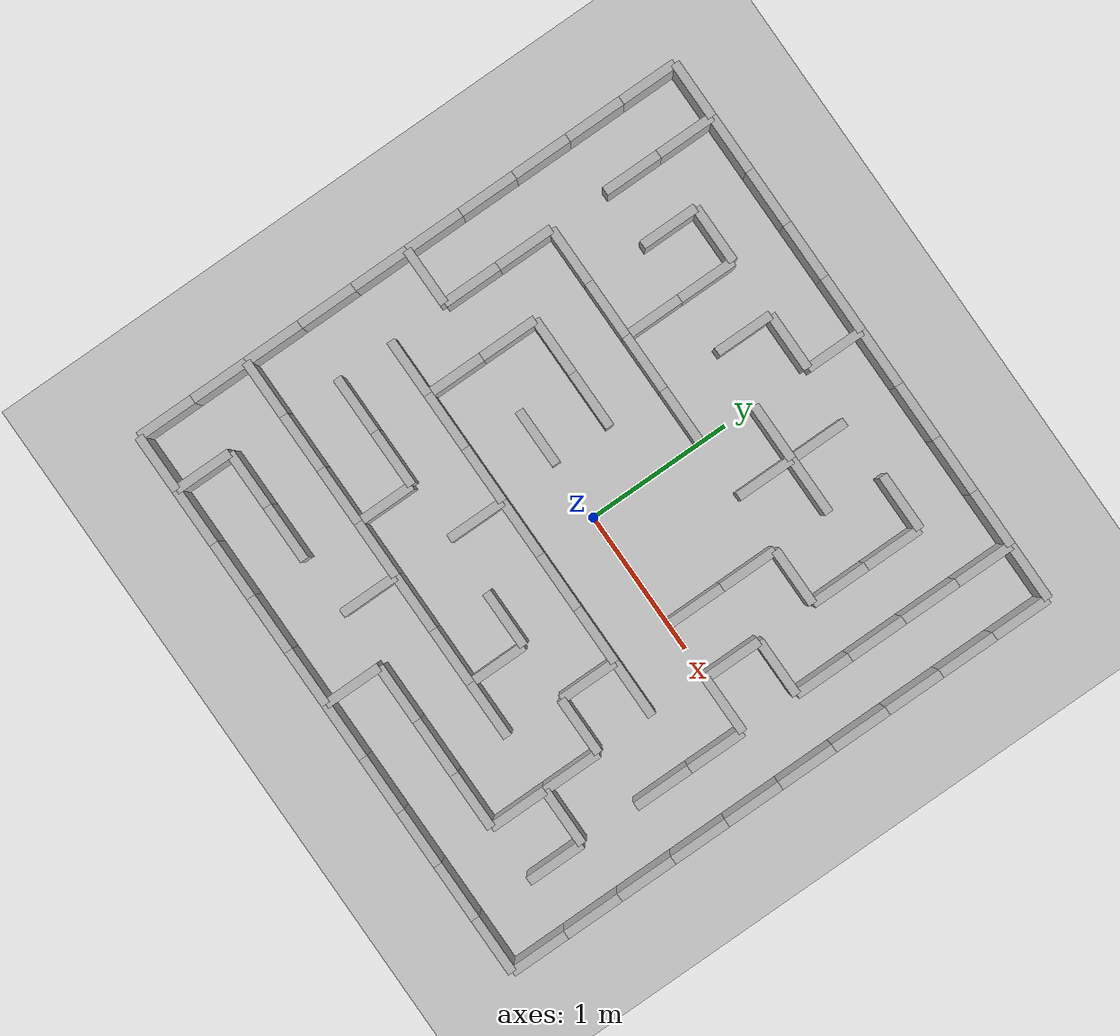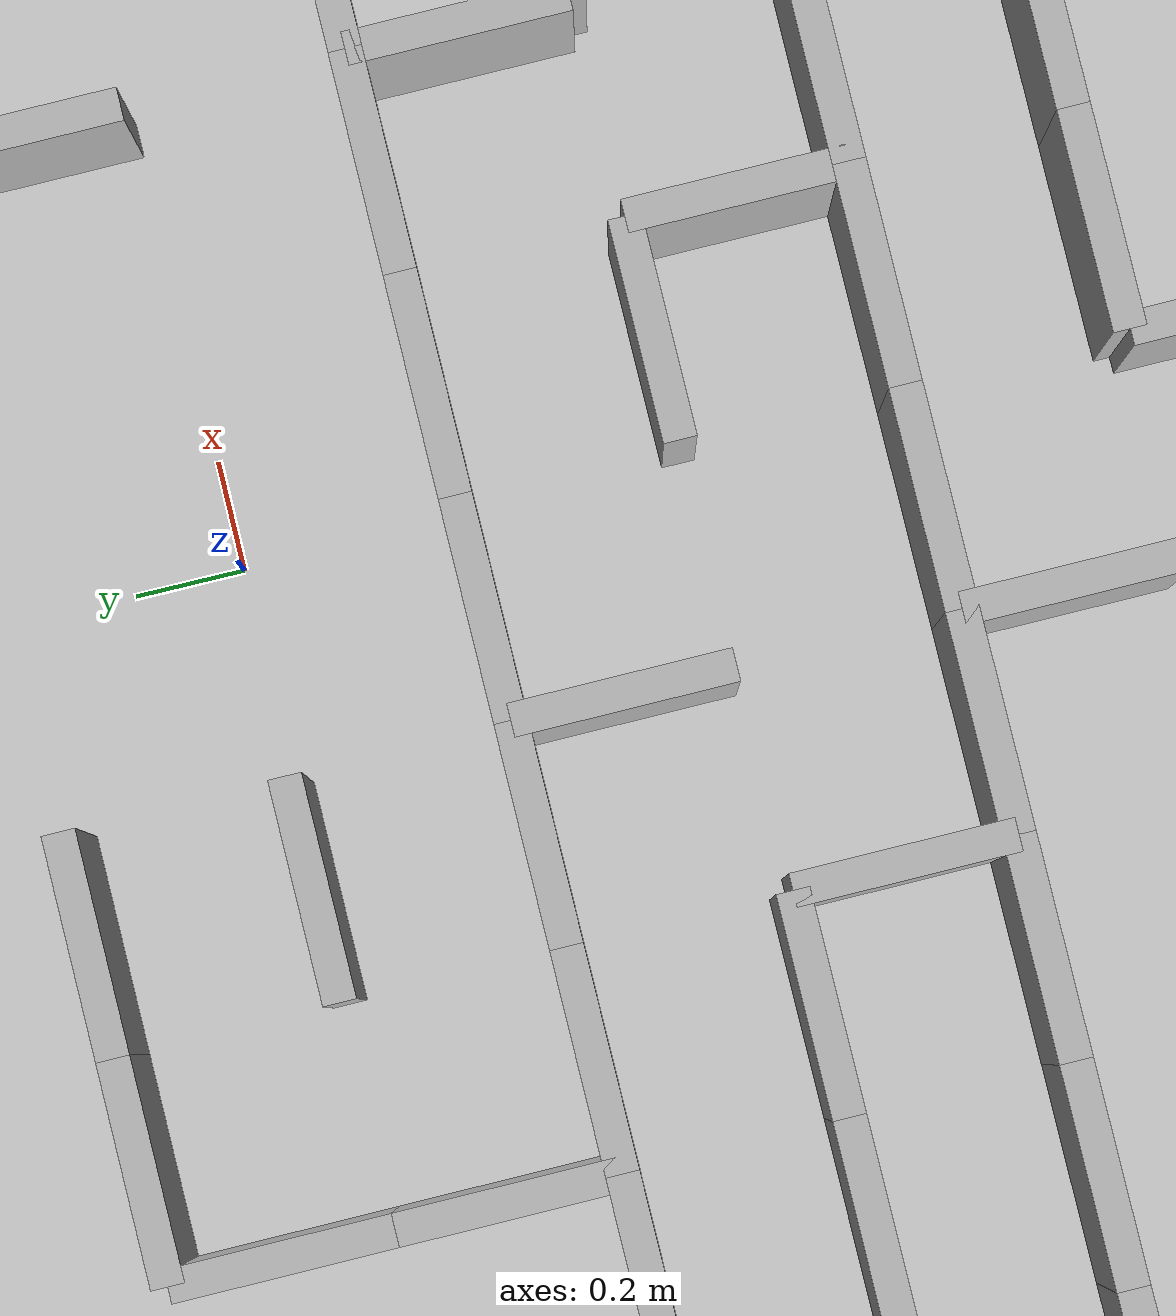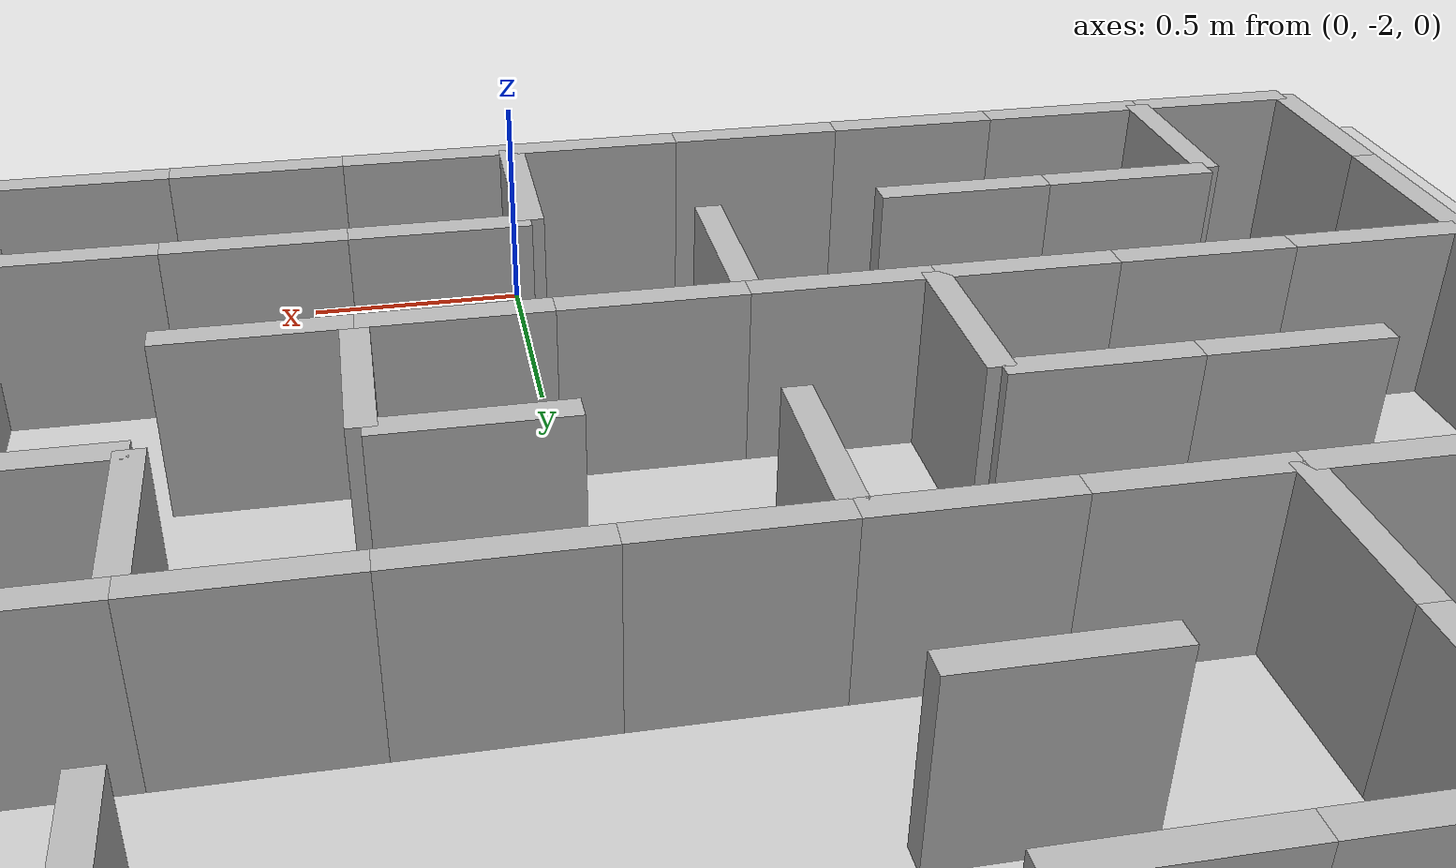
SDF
<?xml version='1.0'?>
<sdf version='1.7'>
  <world name='maze_world'>

        <light type="directional" name="sun">
            <cast_shadows>true</cast_shadows>
            <pose>0 0 10 0 0 0</pose>
            <diffuse>0.8 0.8 0.8 1</diffuse>
            <specular>0.2 0.2 0.2 1</specular>
            <direction>-0.5 0.1 -0.9</direction>
        </light>
          <model name='ground'>
    <static>true</static>
    <link name='link'>
      <collision name='collision'>
        <geometry>
          <plane>
            <normal>0 0 1</normal>
            <size>8.0 8.0</size>
          </plane>
        </geometry>
      </collision>
      <visual name='visual'>
        <geometry>
          <plane>
            <normal>0 0 1</normal>
            <size>8.0 8.0</size>
          </plane>
        </geometry>
      </visual>
    </link>
  </model>
  <gui>
    <camera name='camera'>
      <pose>0 0 1.6 0 -0.6 0</pose>
    </camera>
  </gui>
  <model name='maze'>
    <static>true</static>
    <link name='maze_wall_0_link'>
      <pose>-1.8 -2.0 0.2 0 0 0.0</pose>
      <collision name='collision_0'>
        <geometry>
          <box>
            <size>0.3999999999999999 0.06 0.4</size>
          </box>
        </geometry>
      </collision>
      <visual name='visual_0'>
        <geometry>
          <box>
            <size>0.3999999999999999 0.06 0.4</size>
          </box>
        </geometry>
      </visual>
    </link>
    <link name='maze_wall_1_link'>
      <pose>-2.0 -1.8 0.2 0 0 1.5707963267948966</pose>
      <collision name='collision_1'>
        <geometry>
          <box>
            <size>0.3999999999999999 0.06 0.4</size>
          </box>
        </geometry>
      </collision>
      <visual name='visual_1'>
        <geometry>
          <box>
            <size>0.3999999999999999 0.06 0.4</size>
          </box>
        </geometry>
      </visual>
    </link>
    <link name='maze_wall_2_link'>
      <pose>-1.6 -1.8 0.2 0 0 1.5707963267948966</pose>
      <collision name='collision_2'>
        <geometry>
          <box>
            <size>0.3999999999999999 0.06 0.4</size>
          </box>
        </geometry>
      </collision>
      <visual name='visual_2'>
        <geometry>
          <box>
            <size>0.3999999999999999 0.06 0.4</size>
          </box>
        </geometry>
      </visual>
    </link>
    <link name='maze_wall_3_link'>
      <pose>-1.4000000000000001 -2.0 0.2 0 0 0.0</pose>
      <collision name='collision_3'>
        <geometry>
          <box>
            <size>0.3999999999999999 0.06 0.4</size>
          </box>
        </geometry>
      </collision>
      <visual name='visual_3'>
        <geometry>
          <box>
            <size>0.3999999999999999 0.06 0.4</size>
          </box>
        </geometry>
      </visual>
    </link>
    <link name='maze_wall_4_link'>
      <pose>-1.4000000000000001 -1.6 0.2 0 0 0.0</pose>
      <collision name='collision_4'>
        <geometry>
          <box>
            <size>0.3999999999999999 0.06 0.4</size>
          </box>
        </geometry>
      </collision>
      <visual name='visual_4'>
        <geometry>
          <box>
            <size>0.3999999999999999 0.06 0.4</size>
          </box>
        </geometry>
      </visual>
    </link>
    <link name='maze_wall_5_link'>
      <pose>-1.0 -2.0 0.2 0 0 0.0</pose>
      <collision name='collision_5'>
        <geometry>
          <box>
            <size>0.3999999999999999 0.06 0.4</size>
          </box>
        </geometry>
      </collision>
      <visual name='visual_5'>
        <geometry>
          <box>
            <size>0.3999999999999999 0.06 0.4</size>
          </box>
        </geometry>
      </visual>
    </link>
    <link name='maze_wall_6_link'>
      <pose>-1.0 -1.6 0.2 0 0 0.0</pose>
      <collision name='collision_6'>
        <geometry>
          <box>
            <size>0.3999999999999999 0.06 0.4</size>
          </box>
        </geometry>
      </collision>
      <visual name='visual_6'>
        <geometry>
          <box>
            <size>0.3999999999999999 0.06 0.4</size>
          </box>
        </geometry>
      </visual>
    </link>
    <link name='maze_wall_7_link'>
      <pose>-0.5999999999999999 -2.0 0.2 0 0 0.0</pose>
      <collision name='collision_7'>
        <geometry>
          <box>
            <size>0.39999999999999997 0.06 0.4</size>
          </box>
        </geometry>
      </collision>
      <visual name='visual_7'>
        <geometry>
          <box>
            <size>0.39999999999999997 0.06 0.4</size>
          </box>
        </geometry>
      </visual>
    </link>
    <link name='maze_wall_8_link'>
      <pose>-0.1999999999999999 -2.0 0.2 0 0 0.0</pose>
      <collision name='collision_8'>
        <geometry>
          <box>
            <size>0.4 0.06 0.4</size>
          </box>
        </geometry>
      </collision>
      <visual name='visual_8'>
        <geometry>
          <box>
            <size>0.4 0.06 0.4</size>
          </box>
        </geometry>
      </visual>
    </link>
    <link name='maze_wall_9_link'>
      <pose>1.1102230246251565e-16 -1.8 0.2 0 0 1.5707963267948966</pose>
      <collision name='collision_9'>
        <geometry>
          <box>
            <size>0.3999999999999999 0.06 0.4</size>
          </box>
        </geometry>
      </collision>
      <visual name='visual_9'>
        <geometry>
          <box>
            <size>0.3999999999999999 0.06 0.4</size>
          </box>
        </geometry>
      </visual>
    </link>
    <link name='maze_wall_10_link'>
      <pose>0.2 -2.0 0.2 0 0 0.0</pose>
      <collision name='collision_10'>
        <geometry>
          <box>
            <size>0.4 0.06 0.4</size>
          </box>
        </geometry>
      </collision>
      <visual name='visual_10'>
        <geometry>
          <box>
            <size>0.4 0.06 0.4</size>
          </box>
        </geometry>
      </visual>
    </link>
    <link name='maze_wall_11_link'>
      <pose>0.2 -1.6 0.2 0 0 0.0</pose>
      <collision name='collision_11'>
        <geometry>
          <box>
            <size>0.4 0.06 0.4</size>
          </box>
        </geometry>
      </collision>
      <visual name='visual_11'>
        <geometry>
          <box>
            <size>0.4 0.06 0.4</size>
          </box>
        </geometry>
      </visual>
    </link>
    <link name='maze_wall_12_link'>
      <pose>0.6000000000000003 -2.0 0.2 0 0 0.0</pose>
      <collision name='collision_12'>
        <geometry>
          <box>
            <size>0.39999999999999997 0.06 0.4</size>
          </box>
        </geometry>
      </collision>
      <visual name='visual_12'>
        <geometry>
          <box>
            <size>0.39999999999999997 0.06 0.4</size>
          </box>
        </geometry>
      </visual>
    </link>
    <link name='maze_wall_13_link'>
      <pose>0.6000000000000003 -1.6 0.2 0 0 0.0</pose>
      <collision name='collision_13'>
        <geometry>
          <box>
            <size>0.39999999999999997 0.06 0.4</size>
          </box>
        </geometry>
      </collision>
      <visual name='visual_13'>
        <geometry>
          <box>
            <size>0.39999999999999997 0.06 0.4</size>
          </box>
        </geometry>
      </visual>
    </link>
    <link name='maze_wall_14_link'>
      <pose>1.0000000000000002 -2.0 0.2 0 0 0.0</pose>
      <collision name='collision_14'>
        <geometry>
          <box>
            <size>0.3999999999999999 0.06 0.4</size>
          </box>
        </geometry>
      </collision>
      <visual name='visual_14'>
        <geometry>
          <box>
            <size>0.3999999999999999 0.06 0.4</size>
          </box>
        </geometry>
      </visual>
    </link>
    <link name='maze_wall_15_link'>
      <pose>1.0000000000000002 -1.6 0.2 0 0 0.0</pose>
      <collision name='collision_15'>
        <geometry>
          <box>
            <size>0.3999999999999999 0.06 0.4</size>
          </box>
        </geometry>
      </collision>
      <visual name='visual_15'>
        <geometry>
          <box>
            <size>0.3999999999999999 0.06 0.4</size>
          </box>
        </geometry>
      </visual>
    </link>
    <link name='maze_wall_16_link'>
      <pose>1.4000000000000001 -2.0 0.2 0 0 0.0</pose>
      <collision name='collision_16'>
        <geometry>
          <box>
            <size>0.3999999999999999 0.06 0.4</size>
          </box>
        </geometry>
      </collision>
      <visual name='visual_16'>
        <geometry>
          <box>
            <size>0.3999999999999999 0.06 0.4</size>
          </box>
        </geometry>
      </visual>
    </link>
    <link name='maze_wall_17_link'>
      <pose>1.8 -2.0 0.2 0 0 0.0</pose>
      <collision name='collision_17'>
        <geometry>
          <box>
            <size>0.3999999999999999 0.06 0.4</size>
          </box>
        </geometry>
      </collision>
      <visual name='visual_17'>
        <geometry>
          <box>
            <size>0.3999999999999999 0.06 0.4</size>
          </box>
        </geometry>
      </visual>
    </link>
    <link name='maze_wall_18_link'>
      <pose>2.0 -1.8 0.2 0 0 1.5707963267948966</pose>
      <collision name='collision_18'>
        <geometry>
          <box>
            <size>0.3999999999999999 0.06 0.4</size>
          </box>
        </geometry>
      </collision>
      <visual name='visual_18'>
        <geometry>
          <box>
            <size>0.3999999999999999 0.06 0.4</size>
          </box>
        </geometry>
      </visual>
    </link>
    <link name='maze_wall_19_link'>
      <pose>-1.8 -1.2000000000000002 0.2 0 0 0.0</pose>
      <collision name='collision_19'>
        <geometry>
          <box>
            <size>0.3999999999999999 0.06 0.4</size>
          </box>
        </geometry>
      </collision>
      <visual name='visual_19'>
        <geometry>
          <box>
            <size>0.3999999999999999 0.06 0.4</size>
          </box>
        </geometry>
      </visual>
    </link>
    <link name='maze_wall_20_link'>
      <pose>-2.0 -1.4000000000000001 0.2 0 0 1.5707963267948966</pose>
      <collision name='collision_20'>
        <geometry>
          <box>
            <size>0.3999999999999999 0.06 0.4</size>
          </box>
        </geometry>
      </collision>
      <visual name='visual_20'>
        <geometry>
          <box>
            <size>0.3999999999999999 0.06 0.4</size>
          </box>
        </geometry>
      </visual>
    </link>
    <link name='maze_wall_21_link'>
      <pose>-1.4000000000000001 -1.2000000000000002 0.2 0 0 0.0</pose>
      <collision name='collision_21'>
        <geometry>
          <box>
            <size>0.3999999999999999 0.06 0.4</size>
          </box>
        </geometry>
      </collision>
      <visual name='visual_21'>
        <geometry>
          <box>
            <size>0.3999999999999999 0.06 0.4</size>
          </box>
        </geometry>
      </visual>
    </link>
    <link name='maze_wall_22_link'>
      <pose>-1.0 -1.2000000000000002 0.2 0 0 0.0</pose>
      <collision name='collision_22'>
        <geometry>
          <box>
            <size>0.3999999999999999 0.06 0.4</size>
          </box>
        </geometry>
      </collision>
      <visual name='visual_22'>
        <geometry>
          <box>
            <size>0.3999999999999999 0.06 0.4</size>
          </box>
        </geometry>
      </visual>
    </link>
    <link name='maze_wall_23_link'>
      <pose>-0.5999999999999999 -1.2000000000000002 0.2 0 0 0.0</pose>
      <collision name='collision_23'>
        <geometry>
          <box>
            <size>0.39999999999999997 0.06 0.4</size>
          </box>
        </geometry>
      </collision>
      <visual name='visual_23'>
        <geometry>
          <box>
            <size>0.39999999999999997 0.06 0.4</size>
          </box>
        </geometry>
      </visual>
    </link>
    <link name='maze_wall_24_link'>
      <pose>-0.39999999999999986 -1.4000000000000001 0.2 0 0 1.5707963267948966</pose>
      <collision name='collision_24'>
        <geometry>
          <box>
            <size>0.3999999999999999 0.06 0.4</size>
          </box>
        </geometry>
      </collision>
      <visual name='visual_24'>
        <geometry>
          <box>
            <size>0.3999999999999999 0.06 0.4</size>
          </box>
        </geometry>
      </visual>
    </link>
    <link name='maze_wall_25_link'>
      <pose>-0.1999999999999999 -1.2000000000000002 0.2 0 0 0.0</pose>
      <collision name='collision_25'>
        <geometry>
          <box>
            <size>0.4 0.06 0.4</size>
          </box>
        </geometry>
      </collision>
      <visual name='visual_25'>
        <geometry>
          <box>
            <size>0.4 0.06 0.4</size>
          </box>
        </geometry>
      </visual>
    </link>
    <link name='maze_wall_26_link'>
      <pose>0.2 -1.2000000000000002 0.2 0 0 0.0</pose>
      <collision name='collision_26'>
        <geometry>
          <box>
            <size>0.4 0.06 0.4</size>
          </box>
        </geometry>
      </collision>
      <visual name='visual_26'>
        <geometry>
          <box>
            <size>0.4 0.06 0.4</size>
          </box>
        </geometry>
      </visual>
    </link>
    <link name='maze_wall_27_link'>
      <pose>0.6000000000000003 -1.2000000000000002 0.2 0 0 0.0</pose>
      <collision name='collision_27'>
        <geometry>
          <box>
            <size>0.39999999999999997 0.06 0.4</size>
          </box>
        </geometry>
      </collision>
      <visual name='visual_27'>
        <geometry>
          <box>
            <size>0.39999999999999997 0.06 0.4</size>
          </box>
        </geometry>
      </visual>
    </link>
    <link name='maze_wall_28_link'>
      <pose>1.2000000000000002 -1.4000000000000001 0.2 0 0 1.5707963267948966</pose>
      <collision name='collision_28'>
        <geometry>
          <box>
            <size>0.3999999999999999 0.06 0.4</size>
          </box>
        </geometry>
      </collision>
      <visual name='visual_28'>
        <geometry>
          <box>
            <size>0.3999999999999999 0.06 0.4</size>
          </box>
        </geometry>
      </visual>
    </link>
    <link name='maze_wall_29_link'>
      <pose>1.4000000000000001 -1.2000000000000002 0.2 0 0 0.0</pose>
      <collision name='collision_29'>
        <geometry>
          <box>
            <size>0.3999999999999999 0.06 0.4</size>
          </box>
        </geometry>
      </collision>
      <visual name='visual_29'>
        <geometry>
          <box>
            <size>0.3999999999999999 0.06 0.4</size>
          </box>
        </geometry>
      </visual>
    </link>
    <link name='maze_wall_30_link'>
      <pose>1.6 -1.4000000000000001 0.2 0 0 1.5707963267948966</pose>
      <collision name='collision_30'>
        <geometry>
          <box>
            <size>0.3999999999999999 0.06 0.4</size>
          </box>
        </geometry>
      </collision>
      <visual name='visual_30'>
        <geometry>
          <box>
            <size>0.3999999999999999 0.06 0.4</size>
          </box>
        </geometry>
      </visual>
    </link>
    <link name='maze_wall_31_link'>
      <pose>2.0 -1.4000000000000001 0.2 0 0 1.5707963267948966</pose>
      <collision name='collision_31'>
        <geometry>
          <box>
            <size>0.3999999999999999 0.06 0.4</size>
          </box>
        </geometry>
      </collision>
      <visual name='visual_31'>
        <geometry>
          <box>
            <size>0.3999999999999999 0.06 0.4</size>
          </box>
        </geometry>
      </visual>
    </link>
    <link name='maze_wall_32_link'>
      <pose>-2.0 -1.0 0.2 0 0 1.5707963267948966</pose>
      <collision name='collision_32'>
        <geometry>
          <box>
            <size>0.3999999999999999 0.06 0.4</size>
          </box>
        </geometry>
      </collision>
      <visual name='visual_32'>
        <geometry>
          <box>
            <size>0.3999999999999999 0.06 0.4</size>
          </box>
        </geometry>
      </visual>
    </link>
    <link name='maze_wall_33_link'>
      <pose>-1.4000000000000001 -0.8 0.2 0 0 0.0</pose>
      <collision name='collision_33'>
        <geometry>
          <box>
            <size>0.3999999999999999 0.06 0.4</size>
          </box>
        </geometry>
      </collision>
      <visual name='visual_33'>
        <geometry>
          <box>
            <size>0.3999999999999999 0.06 0.4</size>
          </box>
        </geometry>
      </visual>
    </link>
    <link name='maze_wall_34_link'>
      <pose>-1.0 -0.8 0.2 0 0 0.0</pose>
      <collision name='collision_34'>
        <geometry>
          <box>
            <size>0.3999999999999999 0.06 0.4</size>
          </box>
        </geometry>
      </collision>
      <visual name='visual_34'>
        <geometry>
          <box>
            <size>0.3999999999999999 0.06 0.4</size>
          </box>
        </geometry>
      </visual>
    </link>
    <link name='maze_wall_35_link'>
      <pose>-0.8 -1.0 0.2 0 0 1.5707963267948966</pose>
      <collision name='collision_35'>
        <geometry>
          <box>
            <size>0.3999999999999999 0.06 0.4</size>
          </box>
        </geometry>
      </collision>
      <visual name='visual_35'>
        <geometry>
          <box>
            <size>0.3999999999999999 0.06 0.4</size>
          </box>
        </geometry>
      </visual>
    </link>
    <link name='maze_wall_36_link'>
      <pose>0.2 -0.8 0.2 0 0 0.0</pose>
      <collision name='collision_36'>
        <geometry>
          <box>
            <size>0.4 0.06 0.4</size>
          </box>
        </geometry>
      </collision>
      <visual name='visual_36'>
        <geometry>
          <box>
            <size>0.4 0.06 0.4</size>
          </box>
        </geometry>
      </visual>
    </link>
    <link name='maze_wall_37_link'>
      <pose>0.4 -1.0 0.2 0 0 1.5707963267948966</pose>
      <collision name='collision_37'>
        <geometry>
          <box>
            <size>0.3999999999999999 0.06 0.4</size>
          </box>
        </geometry>
      </collision>
      <visual name='visual_37'>
        <geometry>
          <box>
            <size>0.3999999999999999 0.06 0.4</size>
          </box>
        </geometry>
      </visual>
    </link>
    <link name='maze_wall_38_link'>
      <pose>1.0000000000000002 -0.8 0.2 0 0 0.0</pose>
      <collision name='collision_38'>
        <geometry>
          <box>
            <size>0.3999999999999999 0.06 0.4</size>
          </box>
        </geometry>
      </collision>
      <visual name='visual_38'>
        <geometry>
          <box>
            <size>0.3999999999999999 0.06 0.4</size>
          </box>
        </geometry>
      </visual>
    </link>
    <link name='maze_wall_39_link'>
      <pose>1.2000000000000002 -1.0 0.2 0 0 1.5707963267948966</pose>
      <collision name='collision_39'>
        <geometry>
          <box>
            <size>0.3999999999999999 0.06 0.4</size>
          </box>
        </geometry>
      </collision>
      <visual name='visual_39'>
        <geometry>
          <box>
            <size>0.3999999999999999 0.06 0.4</size>
          </box>
        </geometry>
      </visual>
    </link>
    <link name='maze_wall_40_link'>
      <pose>2.0 -1.0 0.2 0 0 1.5707963267948966</pose>
      <collision name='collision_40'>
        <geometry>
          <box>
            <size>0.3999999999999999 0.06 0.4</size>
          </box>
        </geometry>
      </collision>
      <visual name='visual_40'>
        <geometry>
          <box>
            <size>0.3999999999999999 0.06 0.4</size>
          </box>
        </geometry>
      </visual>
    </link>
    <link name='maze_wall_41_link'>
      <pose>-2.0 -0.5999999999999999 0.2 0 0 1.5707963267948966</pose>
      <collision name='collision_41'>
        <geometry>
          <box>
            <size>0.39999999999999997 0.06 0.4</size>
          </box>
        </geometry>
      </collision>
      <visual name='visual_41'>
        <geometry>
          <box>
            <size>0.39999999999999997 0.06 0.4</size>
          </box>
        </geometry>
      </visual>
    </link>
    <link name='maze_wall_42_link'>
      <pose>-1.4000000000000001 -0.39999999999999986 0.2 0 0 0.0</pose>
      <collision name='collision_42'>
        <geometry>
          <box>
            <size>0.3999999999999999 0.06 0.4</size>
          </box>
        </geometry>
      </collision>
      <visual name='visual_42'>
        <geometry>
          <box>
            <size>0.3999999999999999 0.06 0.4</size>
          </box>
        </geometry>
      </visual>
    </link>
    <link name='maze_wall_43_link'>
      <pose>-1.0 -0.39999999999999986 0.2 0 0 0.0</pose>
      <collision name='collision_43'>
        <geometry>
          <box>
            <size>0.3999999999999999 0.06 0.4</size>
          </box>
        </geometry>
      </collision>
      <visual name='visual_43'>
        <geometry>
          <box>
            <size>0.3999999999999999 0.06 0.4</size>
          </box>
        </geometry>
      </visual>
    </link>
    <link name='maze_wall_44_link'>
      <pose>-0.5999999999999999 -0.39999999999999986 0.2 0 0 0.0</pose>
      <collision name='collision_44'>
        <geometry>
          <box>
            <size>0.39999999999999997 0.06 0.4</size>
          </box>
        </geometry>
      </collision>
      <visual name='visual_44'>
        <geometry>
          <box>
            <size>0.39999999999999997 0.06 0.4</size>
          </box>
        </geometry>
      </visual>
    </link>
    <link name='maze_wall_45_link'>
      <pose>-0.39999999999999986 -0.5999999999999999 0.2 0 0 1.5707963267948966</pose>
      <collision name='collision_45'>
        <geometry>
          <box>
            <size>0.39999999999999997 0.06 0.4</size>
          </box>
        </geometry>
      </collision>
      <visual name='visual_45'>
        <geometry>
          <box>
            <size>0.39999999999999997 0.06 0.4</size>
          </box>
        </geometry>
      </visual>
    </link>
    <link name='maze_wall_46_link'>
      <pose>-0.1999999999999999 -0.39999999999999986 0.2 0 0 0.0</pose>
      <collision name='collision_46'>
        <geometry>
          <box>
            <size>0.4 0.06 0.4</size>
          </box>
        </geometry>
      </collision>
      <visual name='visual_46'>
        <geometry>
          <box>
            <size>0.4 0.06 0.4</size>
          </box>
        </geometry>
      </visual>
    </link>
    <link name='maze_wall_47_link'>
      <pose>0.2 -0.39999999999999986 0.2 0 0 0.0</pose>
      <collision name='collision_47'>
        <geometry>
          <box>
            <size>0.4 0.06 0.4</size>
          </box>
        </geometry>
      </collision>
      <visual name='visual_47'>
        <geometry>
          <box>
            <size>0.4 0.06 0.4</size>
          </box>
        </geometry>
      </visual>
    </link>
    <link name='maze_wall_48_link'>
      <pose>0.6000000000000003 -0.39999999999999986 0.2 0 0 0.0</pose>
      <collision name='collision_48'>
        <geometry>
          <box>
            <size>0.39999999999999997 0.06 0.4</size>
          </box>
        </geometry>
      </collision>
      <visual name='visual_48'>
        <geometry>
          <box>
            <size>0.39999999999999997 0.06 0.4</size>
          </box>
        </geometry>
      </visual>
    </link>
    <link name='maze_wall_49_link'>
      <pose>0.8000000000000003 -0.5999999999999999 0.2 0 0 1.5707963267948966</pose>
      <collision name='collision_49'>
        <geometry>
          <box>
            <size>0.39999999999999997 0.06 0.4</size>
          </box>
        </geometry>
      </collision>
      <visual name='visual_49'>
        <geometry>
          <box>
            <size>0.39999999999999997 0.06 0.4</size>
          </box>
        </geometry>
      </visual>
    </link>
    <link name='maze_wall_50_link'>
      <pose>1.0000000000000002 -0.39999999999999986 0.2 0 0 0.0</pose>
      <collision name='collision_50'>
        <geometry>
          <box>
            <size>0.3999999999999999 0.06 0.4</size>
          </box>
        </geometry>
      </collision>
      <visual name='visual_50'>
        <geometry>
          <box>
            <size>0.3999999999999999 0.06 0.4</size>
          </box>
        </geometry>
      </visual>
    </link>
    <link name='maze_wall_51_link'>
      <pose>1.6 -0.5999999999999999 0.2 0 0 1.5707963267948966</pose>
      <collision name='collision_51'>
        <geometry>
          <box>
            <size>0.39999999999999997 0.06 0.4</size>
          </box>
        </geometry>
      </collision>
      <visual name='visual_51'>
        <geometry>
          <box>
            <size>0.39999999999999997 0.06 0.4</size>
          </box>
        </geometry>
      </visual>
    </link>
    <link name='maze_wall_52_link'>
      <pose>2.0 -0.5999999999999999 0.2 0 0 1.5707963267948966</pose>
      <collision name='collision_52'>
        <geometry>
          <box>
            <size>0.39999999999999997 0.06 0.4</size>
          </box>
        </geometry>
      </collision>
      <visual name='visual_52'>
        <geometry>
          <box>
            <size>0.39999999999999997 0.06 0.4</size>
          </box>
        </geometry>
      </visual>
    </link>
    <link name='maze_wall_53_link'>
      <pose>-1.8 1.1102230246251565e-16 0.2 0 0 0.0</pose>
      <collision name='collision_53'>
        <geometry>
          <box>
            <size>0.3999999999999999 0.06 0.4</size>
          </box>
        </geometry>
      </collision>
      <visual name='visual_53'>
        <geometry>
          <box>
            <size>0.3999999999999999 0.06 0.4</size>
          </box>
        </geometry>
      </visual>
    </link>
    <link name='maze_wall_54_link'>
      <pose>-2.0 -0.1999999999999999 0.2 0 0 1.5707963267948966</pose>
      <collision name='collision_54'>
        <geometry>
          <box>
            <size>0.4 0.06 0.4</size>
          </box>
        </geometry>
      </collision>
      <visual name='visual_54'>
        <geometry>
          <box>
            <size>0.4 0.06 0.4</size>
          </box>
        </geometry>
      </visual>
    </link>
    <link name='maze_wall_55_link'>
      <pose>-1.2000000000000002 -0.1999999999999999 0.2 0 0 1.5707963267948966</pose>
      <collision name='collision_55'>
        <geometry>
          <box>
            <size>0.4 0.06 0.4</size>
          </box>
        </geometry>
      </collision>
      <visual name='visual_55'>
        <geometry>
          <box>
            <size>0.4 0.06 0.4</size>
          </box>
        </geometry>
      </visual>
    </link>
    <link name='maze_wall_56_link'>
      <pose>-0.5999999999999999 1.1102230246251565e-16 0.2 0 0 0.0</pose>
      <collision name='collision_56'>
        <geometry>
          <box>
            <size>0.39999999999999997 0.06 0.4</size>
          </box>
        </geometry>
      </collision>
      <visual name='visual_56'>
        <geometry>
          <box>
            <size>0.39999999999999997 0.06 0.4</size>
          </box>
        </geometry>
      </visual>
    </link>
    <link name='maze_wall_57_link'>
      <pose>1.4000000000000001 1.1102230246251565e-16 0.2 0 0 0.0</pose>
      <collision name='collision_57'>
        <geometry>
          <box>
            <size>0.3999999999999999 0.06 0.4</size>
          </box>
        </geometry>
      </collision>
      <visual name='visual_57'>
        <geometry>
          <box>
            <size>0.3999999999999999 0.06 0.4</size>
          </box>
        </geometry>
      </visual>
    </link>
    <link name='maze_wall_58_link'>
      <pose>1.6 -0.1999999999999999 0.2 0 0 1.5707963267948966</pose>
      <collision name='collision_58'>
        <geometry>
          <box>
            <size>0.4 0.06 0.4</size>
          </box>
        </geometry>
      </collision>
      <visual name='visual_58'>
        <geometry>
          <box>
            <size>0.4 0.06 0.4</size>
          </box>
        </geometry>
      </visual>
    </link>
    <link name='maze_wall_59_link'>
      <pose>2.0 -0.1999999999999999 0.2 0 0 1.5707963267948966</pose>
      <collision name='collision_59'>
        <geometry>
          <box>
            <size>0.4 0.06 0.4</size>
          </box>
        </geometry>
      </collision>
      <visual name='visual_59'>
        <geometry>
          <box>
            <size>0.4 0.06 0.4</size>
          </box>
        </geometry>
      </visual>
    </link>
    <link name='maze_wall_60_link'>
      <pose>-2.0 0.2 0.2 0 0 1.5707963267948966</pose>
      <collision name='collision_60'>
        <geometry>
          <box>
            <size>0.4 0.06 0.4</size>
          </box>
        </geometry>
      </collision>
      <visual name='visual_60'>
        <geometry>
          <box>
            <size>0.4 0.06 0.4</size>
          </box>
        </geometry>
      </visual>
    </link>
    <link name='maze_wall_61_link'>
      <pose>-1.6 0.2 0.2 0 0 1.5707963267948966</pose>
      <collision name='collision_61'>
        <geometry>
          <box>
            <size>0.4 0.06 0.4</size>
          </box>
        </geometry>
      </collision>
      <visual name='visual_61'>
        <geometry>
          <box>
            <size>0.4 0.06 0.4</size>
          </box>
        </geometry>
      </visual>
    </link>
    <link name='maze_wall_62_link'>
      <pose>-1.2000000000000002 0.2 0.2 0 0 1.5707963267948966</pose>
      <collision name='collision_62'>
        <geometry>
          <box>
            <size>0.4 0.06 0.4</size>
          </box>
        </geometry>
      </collision>
      <visual name='visual_62'>
        <geometry>
          <box>
            <size>0.4 0.06 0.4</size>
          </box>
        </geometry>
      </visual>
    </link>
    <link name='maze_wall_63_link'>
      <pose>-1.0 0.4 0.2 0 0 0.0</pose>
      <collision name='collision_63'>
        <geometry>
          <box>
            <size>0.3999999999999999 0.06 0.4</size>
          </box>
        </geometry>
      </collision>
      <visual name='visual_63'>
        <geometry>
          <box>
            <size>0.3999999999999999 0.06 0.4</size>
          </box>
        </geometry>
      </visual>
    </link>
    <link name='maze_wall_64_link'>
      <pose>-0.5999999999999999 0.4 0.2 0 0 0.0</pose>
      <collision name='collision_64'>
        <geometry>
          <box>
            <size>0.39999999999999997 0.06 0.4</size>
          </box>
        </geometry>
      </collision>
      <visual name='visual_64'>
        <geometry>
          <box>
            <size>0.39999999999999997 0.06 0.4</size>
          </box>
        </geometry>
      </visual>
    </link>
    <link name='maze_wall_65_link'>
      <pose>0.8000000000000003 0.2 0.2 0 0 1.5707963267948966</pose>
      <collision name='collision_65'>
        <geometry>
          <box>
            <size>0.4 0.06 0.4</size>
          </box>
        </geometry>
      </collision>
      <visual name='visual_65'>
        <geometry>
          <box>
            <size>0.4 0.06 0.4</size>
          </box>
        </geometry>
      </visual>
    </link>
    <link name='maze_wall_66_link'>
      <pose>1.2000000000000002 0.2 0.2 0 0 1.5707963267948966</pose>
      <collision name='collision_66'>
        <geometry>
          <box>
            <size>0.4 0.06 0.4</size>
          </box>
        </geometry>
      </collision>
      <visual name='visual_66'>
        <geometry>
          <box>
            <size>0.4 0.06 0.4</size>
          </box>
        </geometry>
      </visual>
    </link>
    <link name='maze_wall_67_link'>
      <pose>1.4000000000000001 0.4 0.2 0 0 0.0</pose>
      <collision name='collision_67'>
        <geometry>
          <box>
            <size>0.3999999999999999 0.06 0.4</size>
          </box>
        </geometry>
      </collision>
      <visual name='visual_67'>
        <geometry>
          <box>
            <size>0.3999999999999999 0.06 0.4</size>
          </box>
        </geometry>
      </visual>
    </link>
    <link name='maze_wall_68_link'>
      <pose>2.0 0.2 0.2 0 0 1.5707963267948966</pose>
      <collision name='collision_68'>
        <geometry>
          <box>
            <size>0.4 0.06 0.4</size>
          </box>
        </geometry>
      </collision>
      <visual name='visual_68'>
        <geometry>
          <box>
            <size>0.4 0.06 0.4</size>
          </box>
        </geometry>
      </visual>
    </link>
    <link name='maze_wall_69_link'>
      <pose>-2.0 0.6000000000000003 0.2 0 0 1.5707963267948966</pose>
      <collision name='collision_69'>
        <geometry>
          <box>
            <size>0.39999999999999997 0.06 0.4</size>
          </box>
        </geometry>
      </collision>
      <visual name='visual_69'>
        <geometry>
          <box>
            <size>0.39999999999999997 0.06 0.4</size>
          </box>
        </geometry>
      </visual>
    </link>
    <link name='maze_wall_70_link'>
      <pose>-1.6 0.6000000000000003 0.2 0 0 1.5707963267948966</pose>
      <collision name='collision_70'>
        <geometry>
          <box>
            <size>0.39999999999999997 0.06 0.4</size>
          </box>
        </geometry>
      </collision>
      <visual name='visual_70'>
        <geometry>
          <box>
            <size>0.39999999999999997 0.06 0.4</size>
          </box>
        </geometry>
      </visual>
    </link>
    <link name='maze_wall_71_link'>
      <pose>-1.4000000000000001 0.8000000000000003 0.2 0 0 0.0</pose>
      <collision name='collision_71'>
        <geometry>
          <box>
            <size>0.3999999999999999 0.06 0.4</size>
          </box>
        </geometry>
      </collision>
      <visual name='visual_71'>
        <geometry>
          <box>
            <size>0.3999999999999999 0.06 0.4</size>
          </box>
        </geometry>
      </visual>
    </link>
    <link name='maze_wall_72_link'>
      <pose>-1.0 0.8000000000000003 0.2 0 0 0.0</pose>
      <collision name='collision_72'>
        <geometry>
          <box>
            <size>0.3999999999999999 0.06 0.4</size>
          </box>
        </geometry>
      </collision>
      <visual name='visual_72'>
        <geometry>
          <box>
            <size>0.3999999999999999 0.06 0.4</size>
          </box>
        </geometry>
      </visual>
    </link>
    <link name='maze_wall_73_link'>
      <pose>-0.5999999999999999 0.8000000000000003 0.2 0 0 0.0</pose>
      <collision name='collision_73'>
        <geometry>
          <box>
            <size>0.39999999999999997 0.06 0.4</size>
          </box>
        </geometry>
      </collision>
      <visual name='visual_73'>
        <geometry>
          <box>
            <size>0.39999999999999997 0.06 0.4</size>
          </box>
        </geometry>
      </visual>
    </link>
    <link name='maze_wall_74_link'>
      <pose>1.0000000000000002 0.8000000000000003 0.2 0 0 0.0</pose>
      <collision name='collision_74'>
        <geometry>
          <box>
            <size>0.3999999999999999 0.06 0.4</size>
          </box>
        </geometry>
      </collision>
      <visual name='visual_74'>
        <geometry>
          <box>
            <size>0.3999999999999999 0.06 0.4</size>
          </box>
        </geometry>
      </visual>
    </link>
    <link name='maze_wall_75_link'>
      <pose>0.8000000000000003 0.6000000000000003 0.2 0 0 1.5707963267948966</pose>
      <collision name='collision_75'>
        <geometry>
          <box>
            <size>0.39999999999999997 0.06 0.4</size>
          </box>
        </geometry>
      </collision>
      <visual name='visual_75'>
        <geometry>
          <box>
            <size>0.39999999999999997 0.06 0.4</size>
          </box>
        </geometry>
      </visual>
    </link>
    <link name='maze_wall_76_link'>
      <pose>1.6 0.6000000000000003 0.2 0 0 1.5707963267948966</pose>
      <collision name='collision_76'>
        <geometry>
          <box>
            <size>0.39999999999999997 0.06 0.4</size>
          </box>
        </geometry>
      </collision>
      <visual name='visual_76'>
        <geometry>
          <box>
            <size>0.39999999999999997 0.06 0.4</size>
          </box>
        </geometry>
      </visual>
    </link>
    <link name='maze_wall_77_link'>
      <pose>2.0 0.6000000000000003 0.2 0 0 1.5707963267948966</pose>
      <collision name='collision_77'>
        <geometry>
          <box>
            <size>0.39999999999999997 0.06 0.4</size>
          </box>
        </geometry>
      </collision>
      <visual name='visual_77'>
        <geometry>
          <box>
            <size>0.39999999999999997 0.06 0.4</size>
          </box>
        </geometry>
      </visual>
    </link>
    <link name='maze_wall_78_link'>
      <pose>-2.0 1.0000000000000002 0.2 0 0 1.5707963267948966</pose>
      <collision name='collision_78'>
        <geometry>
          <box>
            <size>0.3999999999999999 0.06 0.4</size>
          </box>
        </geometry>
      </collision>
      <visual name='visual_78'>
        <geometry>
          <box>
            <size>0.3999999999999999 0.06 0.4</size>
          </box>
        </geometry>
      </visual>
    </link>
    <link name='maze_wall_79_link'>
      <pose>-0.8 1.0000000000000002 0.2 0 0 1.5707963267948966</pose>
      <collision name='collision_79'>
        <geometry>
          <box>
            <size>0.3999999999999999 0.06 0.4</size>
          </box>
        </geometry>
      </collision>
      <visual name='visual_79'>
        <geometry>
          <box>
            <size>0.3999999999999999 0.06 0.4</size>
          </box>
        </geometry>
      </visual>
    </link>
    <link name='maze_wall_80_link'>
      <pose>-0.1999999999999999 0.8000000000000003 0.2 0 0 0.0</pose>
      <collision name='collision_80'>
        <geometry>
          <box>
            <size>0.4 0.06 0.4</size>
          </box>
        </geometry>
      </collision>
      <visual name='visual_80'>
        <geometry>
          <box>
            <size>0.4 0.06 0.4</size>
          </box>
        </geometry>
      </visual>
    </link>
    <link name='maze_wall_81_link'>
      <pose>0.2 1.2000000000000002 0.2 0 0 0.0</pose>
      <collision name='collision_81'>
        <geometry>
          <box>
            <size>0.4 0.06 0.4</size>
          </box>
        </geometry>
      </collision>
      <visual name='visual_81'>
        <geometry>
          <box>
            <size>0.4 0.06 0.4</size>
          </box>
        </geometry>
      </visual>
    </link>
    <link name='maze_wall_82_link'>
      <pose>0.4 1.0000000000000002 0.2 0 0 1.5707963267948966</pose>
      <collision name='collision_82'>
        <geometry>
          <box>
            <size>0.3999999999999999 0.06 0.4</size>
          </box>
        </geometry>
      </collision>
      <visual name='visual_82'>
        <geometry>
          <box>
            <size>0.3999999999999999 0.06 0.4</size>
          </box>
        </geometry>
      </visual>
    </link>
    <link name='maze_wall_83_link'>
      <pose>0.6000000000000003 1.2000000000000002 0.2 0 0 0.0</pose>
      <collision name='collision_83'>
        <geometry>
          <box>
            <size>0.39999999999999997 0.06 0.4</size>
          </box>
        </geometry>
      </collision>
      <visual name='visual_83'>
        <geometry>
          <box>
            <size>0.39999999999999997 0.06 0.4</size>
          </box>
        </geometry>
      </visual>
    </link>
    <link name='maze_wall_84_link'>
      <pose>1.2000000000000002 1.0000000000000002 0.2 0 0 1.5707963267948966</pose>
      <collision name='collision_84'>
        <geometry>
          <box>
            <size>0.3999999999999999 0.06 0.4</size>
          </box>
        </geometry>
      </collision>
      <visual name='visual_84'>
        <geometry>
          <box>
            <size>0.3999999999999999 0.06 0.4</size>
          </box>
        </geometry>
      </visual>
    </link>
    <link name='maze_wall_85_link'>
      <pose>1.6 1.0000000000000002 0.2 0 0 1.5707963267948966</pose>
      <collision name='collision_85'>
        <geometry>
          <box>
            <size>0.3999999999999999 0.06 0.4</size>
          </box>
        </geometry>
      </collision>
      <visual name='visual_85'>
        <geometry>
          <box>
            <size>0.3999999999999999 0.06 0.4</size>
          </box>
        </geometry>
      </visual>
    </link>
    <link name='maze_wall_86_link'>
      <pose>2.0 1.0000000000000002 0.2 0 0 1.5707963267948966</pose>
      <collision name='collision_86'>
        <geometry>
          <box>
            <size>0.3999999999999999 0.06 0.4</size>
          </box>
        </geometry>
      </collision>
      <visual name='visual_86'>
        <geometry>
          <box>
            <size>0.3999999999999999 0.06 0.4</size>
          </box>
        </geometry>
      </visual>
    </link>
    <link name='maze_wall_87_link'>
      <pose>-2.0 1.4000000000000001 0.2 0 0 1.5707963267948966</pose>
      <collision name='collision_87'>
        <geometry>
          <box>
            <size>0.3999999999999999 0.06 0.4</size>
          </box>
        </geometry>
      </collision>
      <visual name='visual_87'>
        <geometry>
          <box>
            <size>0.3999999999999999 0.06 0.4</size>
          </box>
        </geometry>
      </visual>
    </link>
    <link name='maze_wall_88_link'>
      <pose>-1.6 1.4000000000000001 0.2 0 0 1.5707963267948966</pose>
      <collision name='collision_88'>
        <geometry>
          <box>
            <size>0.3999999999999999 0.06 0.4</size>
          </box>
        </geometry>
      </collision>
      <visual name='visual_88'>
        <geometry>
          <box>
            <size>0.3999999999999999 0.06 0.4</size>
          </box>
        </geometry>
      </visual>
    </link>
    <link name='maze_wall_89_link'>
      <pose>-1.2000000000000002 1.4000000000000001 0.2 0 0 1.5707963267948966</pose>
      <collision name='collision_89'>
        <geometry>
          <box>
            <size>0.3999999999999999 0.06 0.4</size>
          </box>
        </geometry>
      </collision>
      <visual name='visual_89'>
        <geometry>
          <box>
            <size>0.3999999999999999 0.06 0.4</size>
          </box>
        </geometry>
      </visual>
    </link>
    <link name='maze_wall_90_link'>
      <pose>-1.0 1.6 0.2 0 0 0.0</pose>
      <collision name='collision_90'>
        <geometry>
          <box>
            <size>0.3999999999999999 0.06 0.4</size>
          </box>
        </geometry>
      </collision>
      <visual name='visual_90'>
        <geometry>
          <box>
            <size>0.3999999999999999 0.06 0.4</size>
          </box>
        </geometry>
      </visual>
    </link>
    <link name='maze_wall_91_link'>
      <pose>-0.8 1.4000000000000001 0.2 0 0 1.5707963267948966</pose>
      <collision name='collision_91'>
        <geometry>
          <box>
            <size>0.3999999999999999 0.06 0.4</size>
          </box>
        </geometry>
      </collision>
      <visual name='visual_91'>
        <geometry>
          <box>
            <size>0.3999999999999999 0.06 0.4</size>
          </box>
        </geometry>
      </visual>
    </link>
    <link name='maze_wall_92_link'>
      <pose>-0.39999999999999986 1.4000000000000001 0.2 0 0 1.5707963267948966</pose>
      <collision name='collision_92'>
        <geometry>
          <box>
            <size>0.3999999999999999 0.06 0.4</size>
          </box>
        </geometry>
      </collision>
      <visual name='visual_92'>
        <geometry>
          <box>
            <size>0.3999999999999999 0.06 0.4</size>
          </box>
        </geometry>
      </visual>
    </link>
    <link name='maze_wall_93_link'>
      <pose>-0.1999999999999999 1.6 0.2 0 0 0.0</pose>
      <collision name='collision_93'>
        <geometry>
          <box>
            <size>0.4 0.06 0.4</size>
          </box>
        </geometry>
      </collision>
      <visual name='visual_93'>
        <geometry>
          <box>
            <size>0.4 0.06 0.4</size>
          </box>
        </geometry>
      </visual>
    </link>
    <link name='maze_wall_94_link'>
      <pose>0.4 1.4000000000000001 0.2 0 0 1.5707963267948966</pose>
      <collision name='collision_94'>
        <geometry>
          <box>
            <size>0.3999999999999999 0.06 0.4</size>
          </box>
        </geometry>
      </collision>
      <visual name='visual_94'>
        <geometry>
          <box>
            <size>0.3999999999999999 0.06 0.4</size>
          </box>
        </geometry>
      </visual>
    </link>
    <link name='maze_wall_95_link'>
      <pose>1.0000000000000002 1.6 0.2 0 0 0.0</pose>
      <collision name='collision_95'>
        <geometry>
          <box>
            <size>0.3999999999999999 0.06 0.4</size>
          </box>
        </geometry>
      </collision>
      <visual name='visual_95'>
        <geometry>
          <box>
            <size>0.3999999999999999 0.06 0.4</size>
          </box>
        </geometry>
      </visual>
    </link>
    <link name='maze_wall_96_link'>
      <pose>1.2000000000000002 1.4000000000000001 0.2 0 0 1.5707963267948966</pose>
      <collision name='collision_96'>
        <geometry>
          <box>
            <size>0.3999999999999999 0.06 0.4</size>
          </box>
        </geometry>
      </collision>
      <visual name='visual_96'>
        <geometry>
          <box>
            <size>0.3999999999999999 0.06 0.4</size>
          </box>
        </geometry>
      </visual>
    </link>
    <link name='maze_wall_97_link'>
      <pose>1.6 1.4000000000000001 0.2 0 0 1.5707963267948966</pose>
      <collision name='collision_97'>
        <geometry>
          <box>
            <size>0.3999999999999999 0.06 0.4</size>
          </box>
        </geometry>
      </collision>
      <visual name='visual_97'>
        <geometry>
          <box>
            <size>0.3999999999999999 0.06 0.4</size>
          </box>
        </geometry>
      </visual>
    </link>
    <link name='maze_wall_98_link'>
      <pose>2.0 1.4000000000000001 0.2 0 0 1.5707963267948966</pose>
      <collision name='collision_98'>
        <geometry>
          <box>
            <size>0.3999999999999999 0.06 0.4</size>
          </box>
        </geometry>
      </collision>
      <visual name='visual_98'>
        <geometry>
          <box>
            <size>0.3999999999999999 0.06 0.4</size>
          </box>
        </geometry>
      </visual>
    </link>
    <link name='maze_wall_99_link'>
      <pose>-1.8 2.0 0.2 0 0 0.0</pose>
      <collision name='collision_99'>
        <geometry>
          <box>
            <size>0.3999999999999999 0.06 0.4</size>
          </box>
        </geometry>
      </collision>
      <visual name='visual_99'>
        <geometry>
          <box>
            <size>0.3999999999999999 0.06 0.4</size>
          </box>
        </geometry>
      </visual>
    </link>
    <link name='maze_wall_100_link'>
      <pose>-2.0 1.8 0.2 0 0 1.5707963267948966</pose>
      <collision name='collision_100'>
        <geometry>
          <box>
            <size>0.3999999999999999 0.06 0.4</size>
          </box>
        </geometry>
      </collision>
      <visual name='visual_100'>
        <geometry>
          <box>
            <size>0.3999999999999999 0.06 0.4</size>
          </box>
        </geometry>
      </visual>
    </link>
    <link name='maze_wall_101_link'>
      <pose>-1.6 1.8 0.2 0 0 1.5707963267948966</pose>
      <collision name='collision_101'>
        <geometry>
          <box>
            <size>0.3999999999999999 0.06 0.4</size>
          </box>
        </geometry>
      </collision>
      <visual name='visual_101'>
        <geometry>
          <box>
            <size>0.3999999999999999 0.06 0.4</size>
          </box>
        </geometry>
      </visual>
    </link>
    <link name='maze_wall_102_link'>
      <pose>-1.4000000000000001 2.0 0.2 0 0 0.0</pose>
      <collision name='collision_102'>
        <geometry>
          <box>
            <size>0.3999999999999999 0.06 0.4</size>
          </box>
        </geometry>
      </collision>
      <visual name='visual_102'>
        <geometry>
          <box>
            <size>0.3999999999999999 0.06 0.4</size>
          </box>
        </geometry>
      </visual>
    </link>
    <link name='maze_wall_103_link'>
      <pose>-1.0 2.0 0.2 0 0 0.0</pose>
      <collision name='collision_103'>
        <geometry>
          <box>
            <size>0.3999999999999999 0.06 0.4</size>
          </box>
        </geometry>
      </collision>
      <visual name='visual_103'>
        <geometry>
          <box>
            <size>0.3999999999999999 0.06 0.4</size>
          </box>
        </geometry>
      </visual>
    </link>
    <link name='maze_wall_104_link'>
      <pose>-0.5999999999999999 2.0 0.2 0 0 0.0</pose>
      <collision name='collision_104'>
        <geometry>
          <box>
            <size>0.39999999999999997 0.06 0.4</size>
          </box>
        </geometry>
      </collision>
      <visual name='visual_104'>
        <geometry>
          <box>
            <size>0.39999999999999997 0.06 0.4</size>
          </box>
        </geometry>
      </visual>
    </link>
    <link name='maze_wall_105_link'>
      <pose>-0.1999999999999999 2.0 0.2 0 0 0.0</pose>
      <collision name='collision_105'>
        <geometry>
          <box>
            <size>0.4 0.06 0.4</size>
          </box>
        </geometry>
      </collision>
      <visual name='visual_105'>
        <geometry>
          <box>
            <size>0.4 0.06 0.4</size>
          </box>
        </geometry>
      </visual>
    </link>
    <link name='maze_wall_106_link'>
      <pose>1.1102230246251565e-16 1.8 0.2 0 0 1.5707963267948966</pose>
      <collision name='collision_106'>
        <geometry>
          <box>
            <size>0.3999999999999999 0.06 0.4</size>
          </box>
        </geometry>
      </collision>
      <visual name='visual_106'>
        <geometry>
          <box>
            <size>0.3999999999999999 0.06 0.4</size>
          </box>
        </geometry>
      </visual>
    </link>
    <link name='maze_wall_107_link'>
      <pose>0.2 2.0 0.2 0 0 0.0</pose>
      <collision name='collision_107'>
        <geometry>
          <box>
            <size>0.4 0.06 0.4</size>
          </box>
        </geometry>
      </collision>
      <visual name='visual_107'>
        <geometry>
          <box>
            <size>0.4 0.06 0.4</size>
          </box>
        </geometry>
      </visual>
    </link>
    <link name='maze_wall_108_link'>
      <pose>0.6000000000000003 2.0 0.2 0 0 0.0</pose>
      <collision name='collision_108'>
        <geometry>
          <box>
            <size>0.39999999999999997 0.06 0.4</size>
          </box>
        </geometry>
      </collision>
      <visual name='visual_108'>
        <geometry>
          <box>
            <size>0.39999999999999997 0.06 0.4</size>
          </box>
        </geometry>
      </visual>
    </link>
    <link name='maze_wall_109_link'>
      <pose>1.0000000000000002 2.0 0.2 0 0 0.0</pose>
      <collision name='collision_109'>
        <geometry>
          <box>
            <size>0.3999999999999999 0.06 0.4</size>
          </box>
        </geometry>
      </collision>
      <visual name='visual_109'>
        <geometry>
          <box>
            <size>0.3999999999999999 0.06 0.4</size>
          </box>
        </geometry>
      </visual>
    </link>
    <link name='maze_wall_110_link'>
      <pose>1.4000000000000001 2.0 0.2 0 0 0.0</pose>
      <collision name='collision_110'>
        <geometry>
          <box>
            <size>0.3999999999999999 0.06 0.4</size>
          </box>
        </geometry>
      </collision>
      <visual name='visual_110'>
        <geometry>
          <box>
            <size>0.3999999999999999 0.06 0.4</size>
          </box>
        </geometry>
      </visual>
    </link>
    <link name='maze_wall_111_link'>
      <pose>1.6 1.8 0.2 0 0 1.5707963267948966</pose>
      <collision name='collision_111'>
        <geometry>
          <box>
            <size>0.3999999999999999 0.06 0.4</size>
          </box>
        </geometry>
      </collision>
      <visual name='visual_111'>
        <geometry>
          <box>
            <size>0.3999999999999999 0.06 0.4</size>
          </box>
        </geometry>
      </visual>
    </link>
    <link name='maze_wall_112_link'>
      <pose>1.8 2.0 0.2 0 0 0.0</pose>
      <collision name='collision_112'>
        <geometry>
          <box>
            <size>0.3999999999999999 0.06 0.4</size>
          </box>
        </geometry>
      </collision>
      <visual name='visual_112'>
        <geometry>
          <box>
            <size>0.3999999999999999 0.06 0.4</size>
          </box>
        </geometry>
      </visual>
    </link>
    <link name='maze_wall_113_link'>
      <pose>2.0 1.8 0.2 0 0 1.5707963267948966</pose>
      <collision name='collision_113'>
        <geometry>
          <box>
            <size>0.3999999999999999 0.06 0.4</size>
          </box>
        </geometry>
      </collision>
      <visual name='visual_113'>
        <geometry>
          <box>
            <size>0.3999999999999999 0.06 0.4</size>
          </box>
        </geometry>
      </visual>
    </link>
  </model>

  </world>
</sdf>
